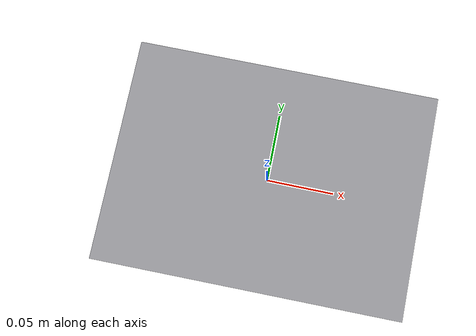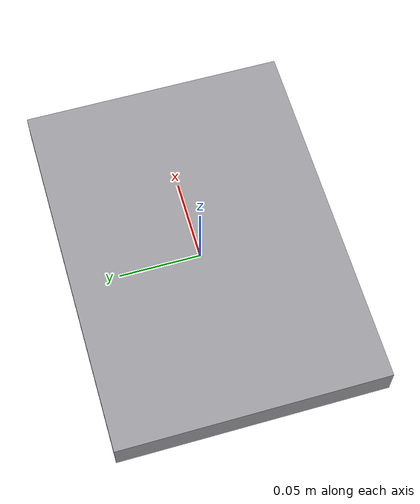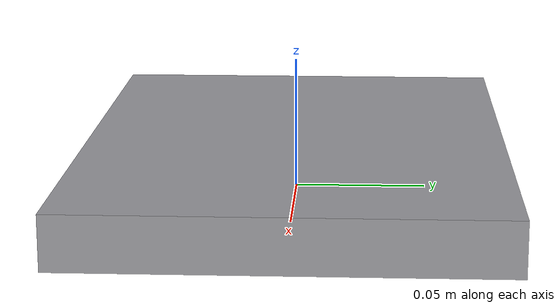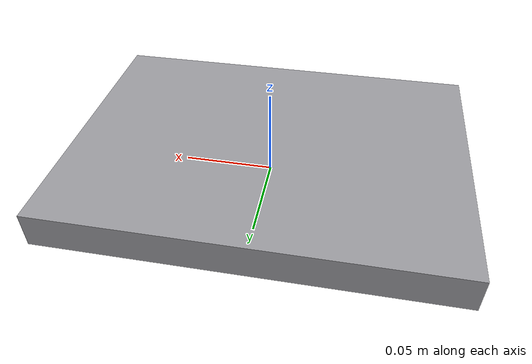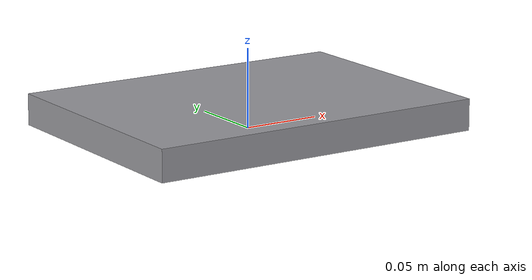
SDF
<?xml version='1.0'?>
<sdf version="1.7">
  <model name="obj_laptop">
    <pose>0 0 0.01 0 0 0</pose>
    <static>true</static>
    <link name="link">
      <collision name="collision">
        <geometry>
          <box>
            <size>0.22 0.16 0.02</size>
          </box>
        </geometry>
      </collision>
      <visual name="visual">
        <geometry>
          <box>
            <size>0.22 0.16 0.02</size>
          </box>
        </geometry>
        <material>
          <ambient>0.60 0.60 0.62 1</ambient>
          <diffuse>0.60 0.60 0.62 1</diffuse>
          <specular>0.05 0.05 0.05 1</specular>
          <emissive>0 0 0 1</emissive>
        </material>
      </visual>
    </link>
  </model>
</sdf>
